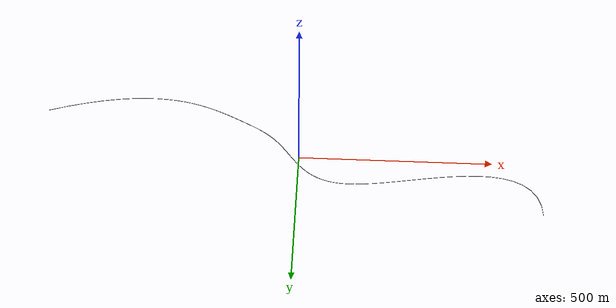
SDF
<?xml version="1.0"?>
<sdf version="1.5">
  <model name="underwater_pipe">
    <static>true</static>
    <link name="link">
      <collision name="underwater_pipe_collision">
        <pose>0 0 0 0 0 0</pose>
        <geometry>
          <mesh><uri>model://underwater_pipe/meshes/underwater_pipe.stl</uri></mesh>
        </geometry>
      </collision>

      <visual name="underwater_pipe_visual">
        <cast_shadows>false</cast_shadows>
        <pose>0 0 0 0 0 0</pose>
        <geometry>
          <mesh><uri>model://underwater_pipe/meshes/underwater_pipe.dae</uri></mesh>
        </geometry>
      </visual>
    </link>
  </model>
</sdf>
